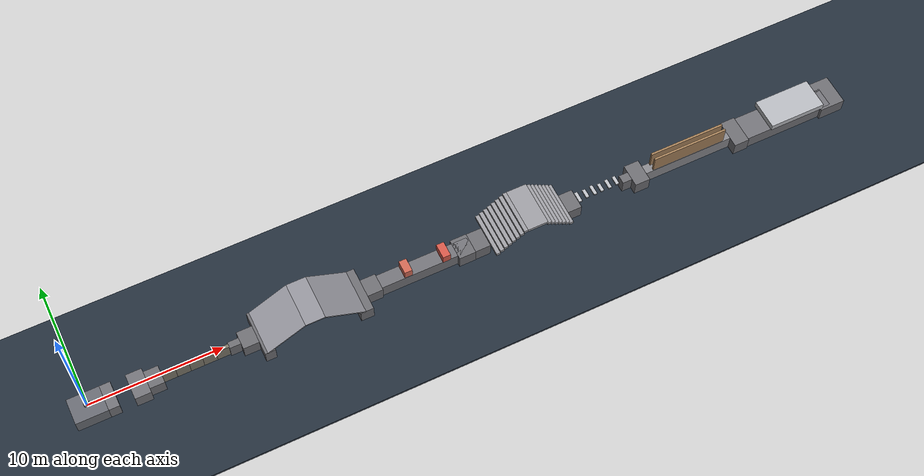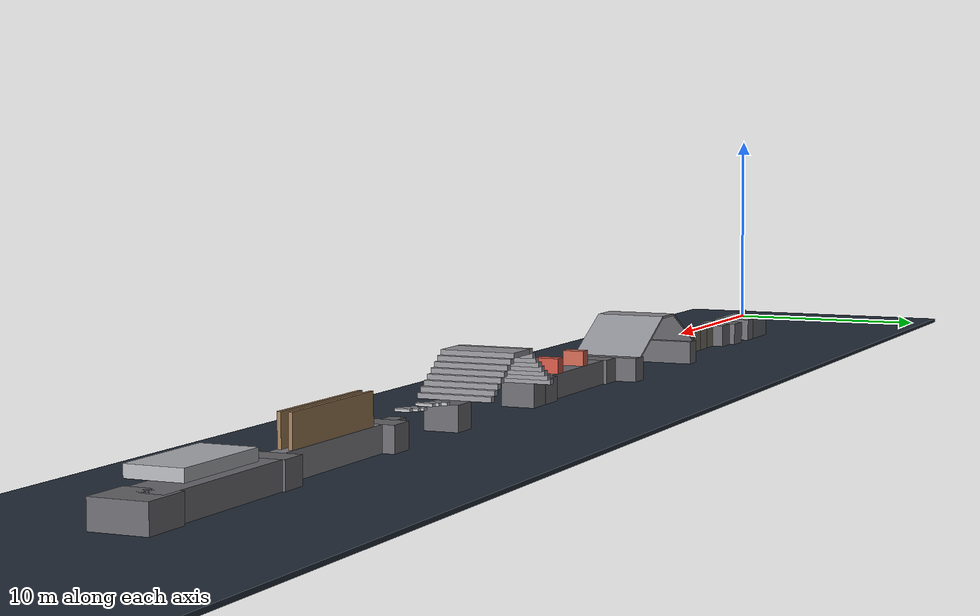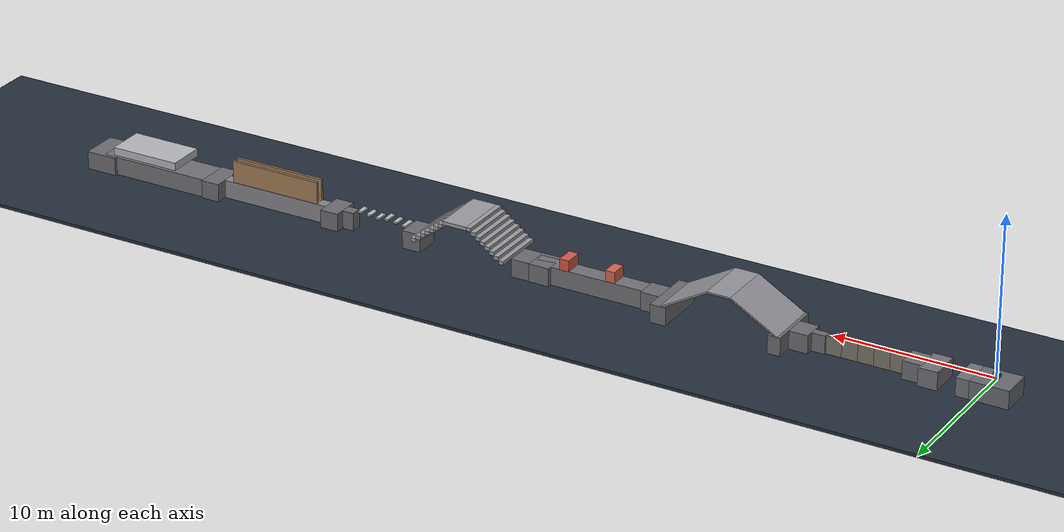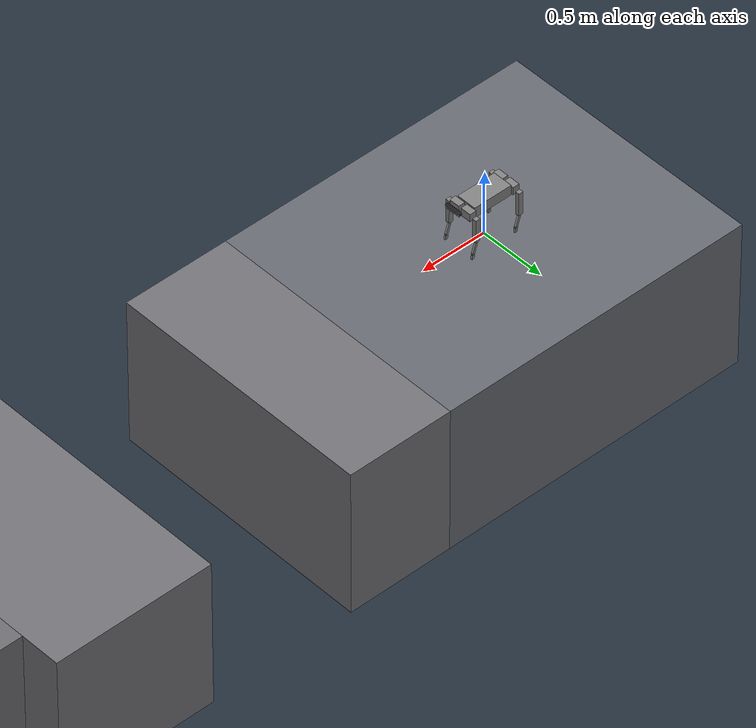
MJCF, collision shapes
<mujoco model="parkour_hard_line">
  <include file="dog_502.xml"/>
  <!-- Linear hard test track built from the level-10 variants of:
       jumpgap, singlebridge, cross_slope, hurdle, cross_stairs,
       air_beams, corridor, air_stones. -->
  <statistic center="0 0 0.16" extent="1.1" />

  <visual>
    <headlight diffuse="0.6 0.6 0.6" ambient="0.3 0.3 0.3" specular="0 0 0" />
    <rgba haze="0.15 0.25 0.35 1" />
    <global azimuth="-130" elevation="-20" />
  </visual>

  <asset>
    <texture type="skybox" builtin="gradient" rgb1="0.3 0.5 0.7" rgb2="0 0 0" width="512" height="3072" />
    <texture type="2d" name="groundplane" builtin="checker" mark="edge" rgb1="0.18 0.22 0.28" rgb2="0.10 0.14 0.18" markrgb="0.8 0.8 0.8" width="300" height="300" />
    <material name="groundplane" texture="groundplane" texuniform="true" texrepeat="5 5" reflectance="0.0" />
  </asset>

  <worldbody>
    <light pos="30 0 8" dir="0 0 -1" directional="true" />

    <!-- Catch floor below the whole course so gaps/bridges/beams stay meaningful. -->
    <geom name="pit_floor" pos="30 0 -1.25" size="80 8 0.10" type="box" material="groundplane" />

    <!-- Start and inter-section connectors (top surface at z=0). -->
    <geom name="start_hub" pos="0 0 -0.60" type="box" size="1.20 1.00 0.60" rgba="0.40 0.41 0.44 1" />
    <geom name="connector_1" pos="4.80 0 -0.60" type="box" size="0.60 0.70 0.60" rgba="0.42 0.42 0.44 1" />
    <geom name="connector_2" pos="11.825 0 -0.60" type="box" size="0.60 0.70 0.60" rgba="0.42 0.42 0.44 1" />
    <geom name="connector_3" pos="21.325 0 -0.60" type="box" size="0.60 0.70 0.60" rgba="0.42 0.42 0.44 1" />
    <geom name="connector_4" pos="29.825 0 -0.60" type="box" size="0.60 0.80 0.60" rgba="0.42 0.42 0.44 1" />
    <geom name="connector_5" pos="37.275 0 -0.60" type="box" size="0.60 0.80 0.60" rgba="0.42 0.42 0.44 1" />
    <geom name="connector_6" pos="42.945 0 -0.60" type="box" size="0.60 0.90 0.60" rgba="0.42 0.42 0.44 1" />
    <geom name="connector_7" pos="51.345 0 -0.60" type="box" size="0.60 1.10 0.60" rgba="0.42 0.42 0.44 1" />
    <geom name="finish_platform" pos="59.295 0 -0.60" type="box" size="1.00 1.20 0.60" rgba="0.42 0.42 0.44 1" />

    <!-- 1. jumpgap, level 10 -->
    <body name="jumpgap_segment" pos="0.30 0 0">
      <geom name="jumpgap_takeoff" pos="1.30 0 -0.60" type="box" size="0.40 1.0 0.60" rgba="0.44 0.44 0.46 1" />
      <geom name="jumpgap_landing" pos="3.40 0 -0.60" type="box" size="0.60 1.0 0.60" rgba="0.44 0.44 0.46 1" />
    </body>

    <!-- 2. singlebridge, level 10 -->
    <body name="singlebridge_segment" pos="4.50 0 0">
      <geom name="singlebridge_bridge_1" pos="1.40 0 -0.60" type="box" size="0.50 0.13 0.60" rgba="0.47 0.45 0.40 1" />
      <geom name="singlebridge_bridge_2" pos="2.40 0 -0.59" type="box" size="0.50 0.13 0.61" rgba="0.47 0.45 0.40 1" />
      <geom name="singlebridge_bridge_3" pos="3.40 0 -0.58" type="box" size="0.50 0.13 0.62" rgba="0.47 0.45 0.40 1" />
      <geom name="singlebridge_bridge_4" pos="4.40 0 -0.59" type="box" size="0.50 0.13 0.61" rgba="0.47 0.45 0.40 1" />
      <geom name="singlebridge_bridge_5" pos="5.40 0 -0.60" type="box" size="0.50 0.13 0.60" rgba="0.47 0.45 0.40 1" />
      <geom name="singlebridge_landing" pos="6.30 0 -0.60" type="box" size="0.425 0.25 0.60" rgba="0.42 0.42 0.44 1" />
    </body>

    <!-- 3. cross_slope, level 10 -->
    <body name="crossslope_segment" pos="10.626804355117875 0 0">
      <geom name="crossslope_entry_platform" pos="2.198195644882125 0 -0.60" type="box" size="0.40 1.75 0.60" rgba="0.42 0.42 0.44 1" />
      <geom name="crossslope_up" pos="3.524760152799509 0 0.811561136490367" type="box" size="1.7265645079173844 1.75 0.05" quat="0.9666377993314406 0  -0.25614715478347516 0" rgba="0.57 0.57 0.60 1" />
      <geom name="crossslope_top" pos="5.75 0 1.66" type="box" size="0.75 1.75 0.05" rgba="0.57 0.57 0.60 1" />
      <geom name="crossslope_down" pos="7.975239847799509 0 0.811561136490367" type="box" size="1.7265645079173844 1.75 0.05" quat="0.9666377993314406 0 0.25614715478347516 0" rgba="0.57 0.57 0.60 1" />
      <geom name="crossslope_end_platform" pos="9.598195644882125 0 -0.60" type="box" size="0.50 1.75 0.60" rgba="0.42 0.42 0.44 1" />
    </body>

    <!-- 4. hurdle, level 10 -->
    <body name="hurdle_segment" pos="21.025 0 0">
      <geom name="hurdle_lane" pos="4.50 0 -0.60" type="box" size="3.60 0.55 0.60" rgba="0.44 0.44 0.46 1" />
      <geom name="hurdle_1" pos="3.00 0 0.35" type="box" size="0.30 0.52 0.35" rgba="0.80 0.40 0.32 1" />
      <geom name="hurdle_2" pos="6.00 0 0.35" type="box" size="0.30 0.58 0.35" rgba="0.82 0.34 0.28 1" />
      <geom name="hurdle_landing" pos="7.55 0 -0.60" type="box" size="0.65 0.82 0.60" rgba="0.42 0.42 0.44 1" />
    </body>

    <!-- 5. cross_stairs, level 10 -->
    <body name="crossstairs_segment" pos="28.425 0 0">
      <geom name="crossstairs_1" pos="2.155 0 0.115" type="box" size="0.155 1.75 0.115" rgba="0.60 0.60 0.62 1" />
      <geom name="crossstairs_2" pos="2.465 0 0.34500000000000003" type="box" size="0.155 1.75 0.115" rgba="0.60 0.60 0.62 1" />
      <geom name="crossstairs_3" pos="2.775 0 0.5750000000000001" type="box" size="0.155 1.75 0.115" rgba="0.60 0.60 0.62 1" />
      <geom name="crossstairs_4" pos="3.085 0 0.805" type="box" size="0.155 1.75 0.115" rgba="0.60 0.60 0.62 1" />
      <geom name="crossstairs_5" pos="3.395 0 1.0350000000000001" type="box" size="0.155 1.75 0.115" rgba="0.60 0.60 0.62 1" />
      <geom name="crossstairs_6" pos="3.705 0 1.2650000000000001" type="box" size="0.155 1.75 0.115" rgba="0.60 0.60 0.62 1" />
      <geom name="crossstairs_7" pos="4.015000000000001 0 1.495" type="box" size="0.155 1.75 0.115" rgba="0.60 0.60 0.62 1" />
      <geom name="crossstairs_8" pos="4.325 0 1.725" type="box" size="0.155 1.75 0.115" rgba="0.60 0.60 0.62 1" />
      <geom name="crossstairs_top" pos="5.28 0 1.725" type="box" size="0.8 1.75 0.115" rgba="0.60 0.60 0.62 1" />
      <geom name="crossstairs_9" pos="6.235 0 1.495" type="box" size="0.155 1.75 0.115" rgba="0.60 0.60 0.62 1" />
      <geom name="crossstairs_10" pos="6.545 0 1.2650000000000001" type="box" size="0.155 1.75 0.115" rgba="0.60 0.60 0.62 1" />
      <geom name="crossstairs_11" pos="6.8549999999999995 0 1.0350000000000001" type="box" size="0.155 1.75 0.115" rgba="0.60 0.60 0.62 1" />
      <geom name="crossstairs_12" pos="7.164999999999999 0 0.8050000000000002" type="box" size="0.155 1.75 0.115" rgba="0.60 0.60 0.62 1" />
      <geom name="crossstairs_13" pos="7.474999999999999 0 0.5750000000000002" type="box" size="0.155 1.75 0.115" rgba="0.60 0.60 0.62 1" />
      <geom name="crossstairs_14" pos="7.784999999999998 0 0.3450000000000002" type="box" size="0.155 1.75 0.115" rgba="0.60 0.60 0.62 1" />
      <geom name="crossstairs_15" pos="8.094999999999999 0 0.11500000000000019" type="box" size="0.155 1.75 0.115" rgba="0.60 0.60 0.62 1" />
    </body>

    <!-- 6. air_beams, level 10 -->
    <body name="airbeams_segment" pos="36.825 0 0">
      <geom name="airbeams_beam_1" pos="1.18 0 0.06" type="box" size="0.13 0.41 0.06" rgba="0.73 0.74 0.76 1" />
      <geom name="airbeams_beam_2" pos="1.80 0 0.12" type="box" size="0.13 0.35 0.06" rgba="0.73 0.74 0.76 1" />
      <geom name="airbeams_beam_3" pos="2.42 0 0.18" type="box" size="0.13 0.39 0.06" rgba="0.73 0.74 0.76 1" />
      <geom name="airbeams_beam_4" pos="3.04 0 0.09" type="box" size="0.13 0.33 0.06" rgba="0.73 0.74 0.76 1" />
      <geom name="airbeams_beam_5" pos="3.66 0 0.15" type="box" size="0.13 0.37 0.06" rgba="0.73 0.74 0.76 1" />
      <geom name="airbeams_beam_6" pos="4.28 0 0.21" type="box" size="0.13 0.34 0.06" rgba="0.73 0.74 0.76 1" />
      <geom name="airbeams_landing" pos="5.145 0 -0.60" type="box" size="0.375 0.34 0.60" rgba="0.42 0.42 0.44 1" />
    </body>

    <!-- 7. corridor, level 10 -->
    <body name="corridor_segment" pos="42.645 0 0">
      <geom name="corridor_floor" pos="4.50 0 -0.60" type="box" size="3.60 0.36 0.60" rgba="0.52 0.52 0.54 1" />
      <geom name="corridor_wall_left" pos="4.50 0.24 0.70" type="box" size="3.00 0.08 0.70" rgba="0.63 0.49 0.34 1" />
      <geom name="corridor_wall_right" pos="4.50 -0.24 0.70" type="box" size="3.00 0.08 0.70" rgba="0.63 0.49 0.34 1" />
    </body>

    <!-- 8. air_stones, level 10 -->
    <body name="airstones_segment" pos="51.045 0 0">
      <geom name="airstones_lane" pos="4.50 0 -0.60" type="box" size="3.60 1.00 0.60" rgba="0.44 0.44 0.46 1" />
      <geom name="airstones_platform" pos="5.00 0 0.50" type="box" size="2.25 1.20 0.25" rgba="0.70 0.71 0.73 1" />
    </body>
  </worldbody>
</mujoco>

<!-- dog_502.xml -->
<mujoco model="dog_502_description">
  <compiler angle="radian" meshdir="../../../dog_502_description/meshes"/>

  <default>
    <joint damping="0.01" armature="0.01" frictionloss="0.02"/>
    <geom condim="3" friction="0.8 0.02 0.01"/>
    <default class="visual">
      <geom type="mesh" contype="0" conaffinity="0" group="2"/>
    </default>
  </default>

  <asset>
    <material name="light_grey" rgba="0.75294 0.75294 0.75294 1"/>
    <material name="black" rgba="0.1 0.1 0.1 1"/>
    <material name="red" rgba="1.0 0.0 0.0 1"/>

    <mesh name="base_link_mesh" file="base_link.STL"/>
    <mesh name="FL_hip_mesh" file="FL_hip.STL"/>
    <mesh name="FR_hip_mesh" file="FR_hip.STL"/>
    <mesh name="RL_hip_mesh" file="RL_hip.STL"/>
    <mesh name="RR_hip_mesh" file="RR_hip.STL"/>
    <mesh name="FL_thigh_mesh" file="FL_thigh.STL"/>
    <mesh name="FR_thigh_mesh" file="FR_thigh.STL"/>
    <mesh name="RL_thigh_mesh" file="RL_thigh.STL"/>
    <mesh name="RR_thigh_mesh" file="RR_thigh.STL"/>
    <mesh name="FL_calf_mesh" file="FL_calf.STL"/>
    <mesh name="FR_calf_mesh" file="FR_calf.STL"/>
    <mesh name="RL_calf_mesh" file="RL_calf.STL"/>
    <mesh name="RR_calf_mesh" file="RR_calf.STL"/>
  </asset>

  <worldbody>
    <body name="base" pos="0 0 0.31">
      <inertial pos="0.000037 0.001297 -0.002295" mass="4.142449" diaginertia="0.013374 0.031506 0.039388"/>
      <freejoint name="root"/>
      <geom mesh="base_link_mesh" material="light_grey" class="visual"/>
      <geom name="base_collision" type="box" size="0.15 0.075 0.04"/>

      <body name="camera" pos="0.255 0 0.04185" quat="0.984811 0 0.173672 0">
        <geom name="camera_visual" type="box" size="0.0125 0.06 0.0145" material="black" contype="0" conaffinity="0" group="2"/>
      </body>

      <body name="FL_hip" pos="0.1767 0.05 0">
        <inertial pos="-0.00457081 -0.00969999 0.0002578" mass="0.50149755" diaginertia="0.00011158 0.00021376 0.00016301"/>
        <joint name="FL_hip_joint" axis="1 0 0" range="-0.837758 0.837758" actuatorfrcrange="-17 17"/>
        <geom mesh="FL_hip_mesh" material="light_grey" class="visual"/>
        <geom name="FL_hip_collision" type="box" size="0.025 0.04 0.03"/>
        <body name="FL_thigh" pos="0 0.0684 0">
          <inertial pos="-0.00194747 -0.02547458 -0.01388663" mass="0.64867804" diaginertia="0.00138293 0.00137329 0.00032193"/>
          <joint name="FL_thigh_joint" axis="0 1 0" range="-1.5708 3.49066" actuatorfrcrange="-17 17"/>
          <geom mesh="FL_thigh_mesh" material="light_grey" class="visual"/>
          <geom name="FL_thigh_collision" type="box" pos="0 0 -0.09" quat="0.707107 0 0.707107 0" size="0.09 0.015 0.0175"/>
          <body name="FL_calf" pos="0 0 -0.18">
            <inertial pos="0.01310003 -0.00009903 -0.09935467" mass="0.06024443" diaginertia="0.0003599 0.00036988 0.00001166"/>
            <joint name="FL_calf_joint" axis="0 1 0" range="-2.72271 -0.837758" actuatorfrcrange="-17 17"/>
            <geom mesh="FL_calf_mesh" material="light_grey" class="visual"/>
            <geom name="FL_calf_collision_0" type="box" pos="0.013 0 -0.053" quat="0.988392 0 -0.151909 0" size="0.00825 0.0075 0.05106"/>
            <geom name="FL_calf_collision_1" type="box" pos="0.0285 0 -0.119" quat="0.997889 0 -0.064954 0" size="0.009 0.0075 0.03"/>
            <geom name="FL_calf_collision_2" type="box" pos="0.02021 0 -0.15878" quat="0.968912 0 0.247404 0" size="0.0125 0.0075 0.02"/>
            <geom name="FL_calf_collision_3" type="box" pos="0.03 0 -0.16" quat="0.998750 0 0.049979 0" size="0.01 0.0075 0.015"/>
            <body name="FL_foot" pos="0 0 -0.18">
              <inertial pos="0 0 0" mass="0.04" diaginertia="0.0000096 0.0000096 0.0000096"/>
              <geom name="FL_foot_visual" type="sphere" size="0.01" material="red" contype="0" conaffinity="0" group="2"/>
              <geom name="FL_foot_collision" type="sphere" pos="0.015 0 0" size="0.0225"/>
            </body>
          </body>
        </body>
      </body>

      <body name="FR_hip" pos="0.1767 -0.05 0">
        <inertial pos="-0.00444412 0.00969999 0.00054368" mass="0.50149755" diaginertia="0.00011122 0.00021421 0.00016383"/>
        <joint name="FR_hip_joint" axis="1 0 0" range="-0.837758 0.837758" actuatorfrcrange="-17 17"/>
        <geom mesh="FR_hip_mesh" material="light_grey" class="visual"/>
        <geom name="FR_hip_collision" type="box" size="0.025 0.04 0.03"/>
        <body name="FR_thigh" pos="0 -0.0684 0">
          <inertial pos="-0.00096707 0.02548196 -0.01388686" mass="0.64867934" diaginertia="0.00138275 0.00137516 0.00032358"/>
          <joint name="FR_thigh_joint" axis="0 1 0" range="-1.5708 3.49066" actuatorfrcrange="-17 17"/>
          <geom mesh="FR_thigh_mesh" material="light_grey" class="visual"/>
          <geom name="FR_thigh_collision" type="box" pos="0 0 -0.09" quat="0.707107 0 0.707107 0" size="0.09 0.015 0.0175"/>
          <body name="FR_calf" pos="0 0 -0.18">
            <inertial pos="0.01310003 0.00010097 -0.09935467" mass="0.06024443" diaginertia="0.0003599 0.00036988 0.00001166"/>
            <joint name="FR_calf_joint" axis="0 1 0" range="-2.72271 -0.837758" actuatorfrcrange="-17 17"/>
            <geom mesh="FR_calf_mesh" material="light_grey" class="visual"/>
            <geom name="FR_calf_collision_0" type="box" pos="0.013 0 -0.053" quat="0.988392 0 -0.151909 0" size="0.00825 0.0075 0.05106"/>
            <geom name="FR_calf_collision_1" type="box" pos="0.0285 0 -0.119" quat="0.997889 0 -0.064954 0" size="0.009 0.0075 0.03"/>
            <geom name="FR_calf_collision_2" type="box" pos="0.02021 0 -0.15878" quat="0.968912 0 0.247404 0" size="0.0125 0.0075 0.02"/>
            <geom name="FR_calf_collision_3" type="box" pos="0.03 0 -0.16" quat="0.998750 0 0.049979 0" size="0.01 0.0075 0.015"/>
            <body name="FR_foot" pos="0 0 -0.18">
              <inertial pos="0 0 0" mass="0.04" diaginertia="0.0000096 0.0000096 0.0000096"/>
              <geom name="FR_foot_visual" type="sphere" size="0.01" material="red" contype="0" conaffinity="0" group="2"/>
              <geom name="FR_foot_collision" type="sphere" pos="0.015 0 0" size="0.0225"/>
            </body>
          </body>
        </body>
      </body>

      <body name="RL_hip" pos="-0.1767 0.05 0">
        <inertial pos="0.00329874 -0.00969999 0.00094432" mass="0.50149755" diaginertia="0.00011271 0.00021836 0.00016649"/>
        <joint name="RL_hip_joint" axis="1 0 0" range="-0.837758 0.837758" actuatorfrcrange="-17 17"/>
        <geom mesh="RL_hip_mesh" material="light_grey" class="visual"/>
        <geom name="RL_hip_collision" type="box" size="0.025 0.04 0.03"/>
        <body name="RL_thigh" pos="0 0.0684 0">
          <inertial pos="-0.00120536 -0.02547458 -0.01523822" mass="0.64867804" diaginertia="0.00135600 0.00134928 0.00032485"/>
          <joint name="RL_thigh_joint" axis="0 1 0" range="-1.5708 3.49066" actuatorfrcrange="-17 17"/>
          <geom mesh="RL_thigh_mesh" material="light_grey" class="visual"/>
          <geom name="RL_thigh_collision" type="box" pos="0 0 -0.09" quat="0.707107 0 0.707107 0" size="0.09 0.015 0.0175"/>
          <body name="RL_calf" pos="0 0 -0.18">
            <inertial pos="0.01310003 -0.00009903 -0.09935467" mass="0.06024443" diaginertia="0.0003599 0.00036988 0.00001166"/>
            <joint name="RL_calf_joint" axis="0 1 0" range="-2.72271 -0.837758" actuatorfrcrange="-17 17"/>
            <geom mesh="RL_calf_mesh" material="light_grey" class="visual"/>
            <geom name="RL_calf_collision_0" type="box" pos="0.013 0 -0.053" quat="0.988392 0 -0.151909 0" size="0.00825 0.0075 0.05106"/>
            <geom name="RL_calf_collision_1" type="box" pos="0.0285 0 -0.119" quat="0.997889 0 -0.064954 0" size="0.009 0.0075 0.03"/>
            <geom name="RL_calf_collision_2" type="box" pos="0.02021 0 -0.15878" quat="0.968912 0 0.247404 0" size="0.0125 0.0075 0.02"/>
            <geom name="RL_calf_collision_3" type="box" pos="0.03 0 -0.16" quat="0.998750 0 0.049979 0" size="0.01 0.0075 0.015"/>
            <body name="RL_foot" pos="0 0 -0.18">
              <inertial pos="0 0 0" mass="0.04" diaginertia="0.0000096 0.0000096 0.0000096"/>
              <geom name="RL_foot_visual" type="sphere" size="0.01" material="red" contype="0" conaffinity="0" group="2"/>
              <geom name="RL_foot_collision" type="sphere" pos="0.015 0 0" size="0.0225"/>
            </body>
          </body>
        </body>
      </body>

      <body name="RR_hip" pos="-0.1767 -0.05 0">
        <inertial pos="0.00444412 0.00969999 -0.00054368" mass="0.50149755" diaginertia="0.00011122 0.00021421 0.00016383"/>
        <joint name="RR_hip_joint" axis="1 0 0" range="-0.837758 0.837758" actuatorfrcrange="-17 17"/>
        <geom mesh="RR_hip_mesh" material="light_grey" class="visual"/>
        <geom name="RR_hip_collision" type="box" size="0.025 0.04 0.03"/>
        <body name="RR_thigh" pos="0 -0.0684 0">
          <inertial pos="-0.00212669 0.02547451 -0.01490311" mass="0.64867934" diaginertia="0.00136777 0.00135386 0.00031766"/>
          <joint name="RR_thigh_joint" axis="0 1 0" range="-1.5708 3.49066" actuatorfrcrange="-17 17"/>
          <geom mesh="RR_thigh_mesh" material="light_grey" class="visual"/>
          <geom name="RR_thigh_collision" type="box" pos="0 0 -0.09" quat="0.707107 0 0.707107 0" size="0.09 0.015 0.0175"/>
          <body name="RR_calf" pos="0 0 -0.18">
            <inertial pos="0.01310003 0.00010097 -0.09935467" mass="0.06024443" diaginertia="0.0003599 0.00036988 0.00001166"/>
            <joint name="RR_calf_joint" axis="0 1 0" range="-2.72271 -0.837758" actuatorfrcrange="-17 17"/>
            <geom mesh="RR_calf_mesh" material="light_grey" class="visual"/>
            <geom name="RR_calf_collision_0" type="box" pos="0.013 0 -0.053" quat="0.988392 0 -0.151909 0" size="0.00825 0.0075 0.05106"/>
            <geom name="RR_calf_collision_1" type="box" pos="0.0285 0 -0.119" quat="0.997889 0 -0.064954 0" size="0.009 0.0075 0.03"/>
            <geom name="RR_calf_collision_2" type="box" pos="0.02021 0 -0.15878" quat="0.968912 0 0.247404 0" size="0.0125 0.0075 0.02"/>
            <geom name="RR_calf_collision_3" type="box" pos="0.03 0 -0.16" quat="0.998750 0 0.049979 0" size="0.01 0.0075 0.015"/>
            <body name="RR_foot" pos="0 0 -0.18">
              <inertial pos="0 0 0" mass="0.04" diaginertia="0.0000096 0.0000096 0.0000096"/>
              <geom name="RR_foot_visual" type="sphere" size="0.01" material="red" contype="0" conaffinity="0" group="2"/>
              <geom name="RR_foot_collision" type="sphere" pos="0.015 0 0" size="0.0225"/>
            </body>
          </body>
        </body>
      </body>
    </body>
  </worldbody>

  <actuator>
    <motor name="FL_hip" joint="FL_hip_joint" ctrllimited="true" ctrlrange="-17 17"/>
    <motor name="FL_thigh" joint="FL_thigh_joint" ctrllimited="true" ctrlrange="-17 17"/>
    <motor name="FL_calf" joint="FL_calf_joint" ctrllimited="true" ctrlrange="-17 17"/>
    <motor name="FR_hip" joint="FR_hip_joint" ctrllimited="true" ctrlrange="-17 17"/>
    <motor name="FR_thigh" joint="FR_thigh_joint" ctrllimited="true" ctrlrange="-17 17"/>
    <motor name="FR_calf" joint="FR_calf_joint" ctrllimited="true" ctrlrange="-17 17"/>
    <motor name="RL_hip" joint="RL_hip_joint" ctrllimited="true" ctrlrange="-17 17"/>
    <motor name="RL_thigh" joint="RL_thigh_joint" ctrllimited="true" ctrlrange="-17 17"/>
    <motor name="RL_calf" joint="RL_calf_joint" ctrllimited="true" ctrlrange="-17 17"/>
    <motor name="RR_hip" joint="RR_hip_joint" ctrllimited="true" ctrlrange="-17 17"/>
    <motor name="RR_thigh" joint="RR_thigh_joint" ctrllimited="true" ctrlrange="-17 17"/>
    <motor name="RR_calf" joint="RR_calf_joint" ctrllimited="true" ctrlrange="-17 17"/>
  </actuator>
</mujoco>
